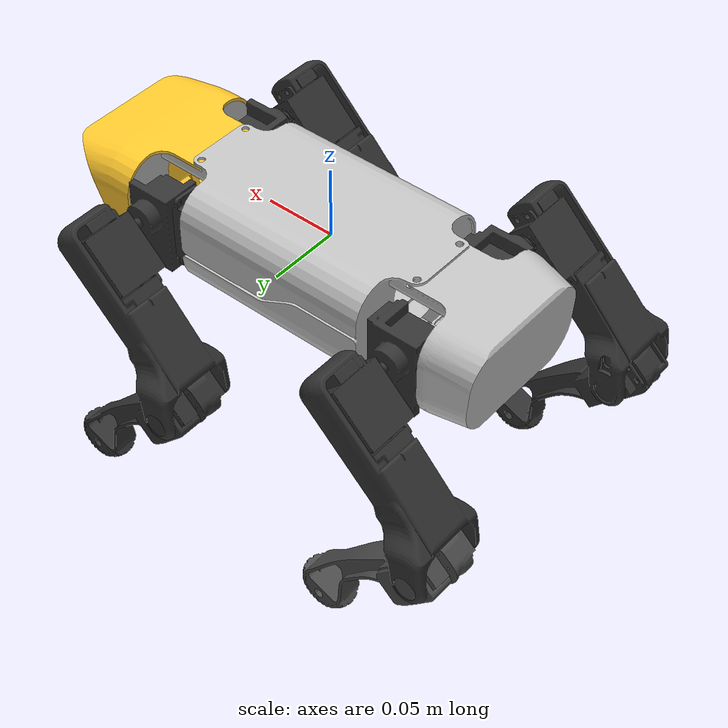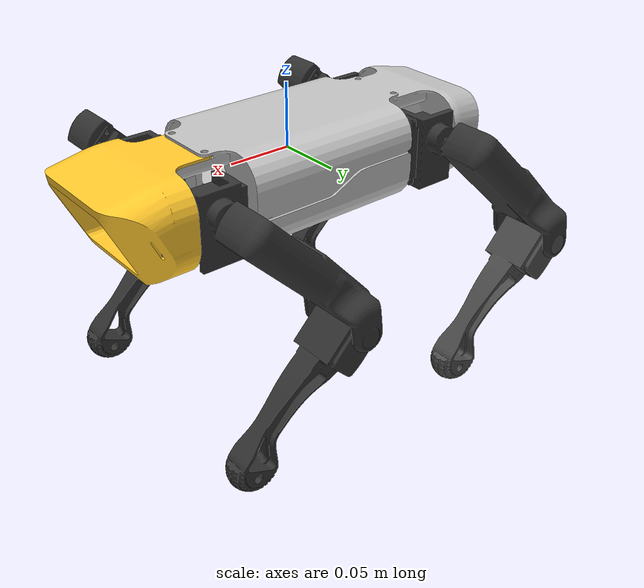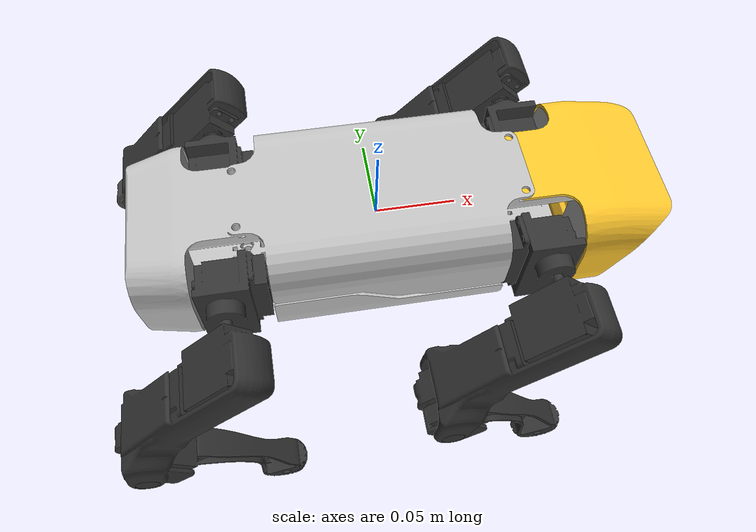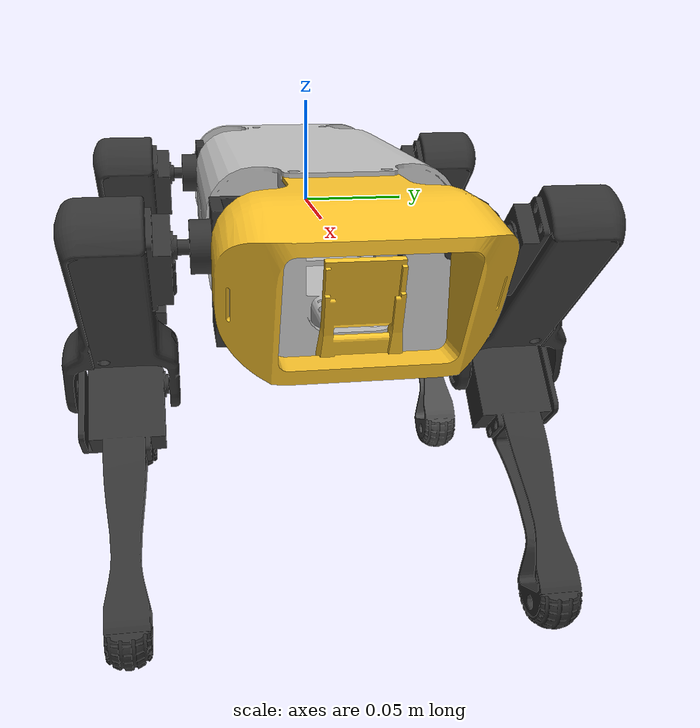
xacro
<?xml version="1.0"?>
<robot
  name="quadruped_robot" xmlns:xacro="http://ros.org/wiki/xacro">

  <link name="dummy_link"></link> # Add this after base link <joint name="dummy_joint" type="fixed">
    <origin rpy="0 0 0" xyz="0 0 0" />
    <parent link="dummy_link" />
    <child link="body_link" />
  </joint>

  <link
    name="body_link">
    <inertial>
      <origin
        xyz="-0.0104808628759405 0.00224834175396924 -0.0052263545122232"
        rpy="0 0 0" />
      <mass
        value="2.8" />
      <inertia
        ixx="100"
        ixy="0"
        ixz="0"
        iyy="100"
        iyz="0"
        izz="100" />
    </inertial>
    <visual>
      <origin
        xyz="0 0 0"
        rpy="0 0 0" />
      <geometry>
        <mesh
          filename="package://quadruped_robot/meshes/body_link.STL" />
      </geometry>
      <material
        name="">
        <color
          rgba="0.752941176470588 0.752941176470588 0.752941176470588 1" />
      </material>
    </visual>
    <collision>
      <origin
        xyz="0 0 0"
        rpy="0 0 0" />
      <geometry>
        <mesh
          filename="package://quadruped_robot/meshes/body_link.STL" />
      </geometry>
    </collision>
  </link>
  <link
    name="frs_link">
    <inertial>
      <origin
        xyz="0.0163093960247798 -0.00505196516998213 -0.0274849143348015"
        rpy="0 0 0" />
      <mass
        value="0.15" />
      <inertia
        ixx="100"
        ixy="0"
        ixz="0"
        iyy="100"
        iyz="0"
        izz="100" />
    </inertial>
    <visual>
      <origin
        xyz="0 0 0"
        rpy="0 0 0" />
      <geometry>
        <mesh
          filename="package://quadruped_robot/meshes/frs_link.STL" />
      </geometry>
      <material
        name="">
        <color
          rgba="0.2 0.2 0.2 1" />
      </material>
    </visual>
    <collision>
      <origin
        xyz="0 0 0"
        rpy="0 0 0" />
      <geometry>
        <mesh
          filename="package://quadruped_robot/meshes/frs_link.STL" />
      </geometry>
    </collision>
  </link>
  <joint
    name="frs_joint"
    type="revolute">
    <origin
      xyz="0.0692381468948904 -0.036563051924115 0"
      rpy="1.5707963267949 0 -1.5707963267949" />
    <parent
      link="body_link" />
    <child
      link="frs_link" />
    <axis
      xyz="0 0 -1" />
    <limit
      lower="-1.04"
      upper="1.04"
      effort="20"
      velocity="6" />
    <dynamics damping="0.01"
      friction="0.6" />
  </joint>
  <link
    name="fre_link">
    <inertial>
      <origin
        xyz="-0.0348617587747592 -0.0401535760436038 0.0318877501407731"
        rpy="0 0 0" />
      <mass
        value="0.15" />
      <inertia
        ixx="100"
        ixy="0"
        ixz="0"
        iyy="100"
        iyz="0"
        izz="100" />
    </inertial>
    <visual>
      <origin
        xyz="0 0 0"
        rpy="0 0 0" />
      <geometry>
        <mesh
          filename="package://quadruped_robot/meshes/fre_link.STL" />
      </geometry>
      <material
        name="">
        <color
          rgba="0.2 0.2 0.2 1" />
      </material>
    </visual>
    <collision>
      <origin
        xyz="0 0 0"
        rpy="0 0 0" />
      <geometry>
        <mesh
          filename="package://quadruped_robot/meshes/fre_link.STL" />
      </geometry>
    </collision>
  </link>
  <joint
    name="fre_joint"
    type="revolute">
    <origin
      xyz="0.026 2.5E-05 -0.0292"
      rpy="0 1.5708 0" />
    <parent
      link="frs_link" />
    <child
      link="fre_link" />
    <axis
      xyz="0 0 1" />
    <limit
      lower="-1.57"
      upper="1.57"
      effort="20"
      velocity="6" />
    <dynamics damping="0.01"
      friction="0.6" />
  </joint>
  <link
    name="frw_link">
    <inertial>
      <origin
        xyz="0.0332213053367797 -0.0366951699334233 0.0245753331663336"
        rpy="0 0 0" />
      <mass
        value="0.15" />
      <inertia
        ixx="100"
        ixy="0"
        ixz="0"
        iyy="100"
        iyz="0"
        izz="100" />
    </inertial>
    <visual>
      <origin
        xyz="0 0 0"
        rpy="0 0 0" />
      <geometry>
        <mesh
          filename="package://quadruped_robot/meshes/frw_link.STL" />
      </geometry>
      <material
        name="">
        <color
          rgba="0.2 0.2 0.2 1" />
      </material>
    </visual>
    <collision>
      <origin
        xyz="0 0 0"
        rpy="0 0 0" />
      <geometry>
        <mesh
          filename="package://quadruped_robot/meshes/frw_link.STL" />
      </geometry>
      <surface>
        <friction>
          <ode>
            <mu>0.1</mu>
            <mu2>0.1</mu2>
          </ode>
        </friction>
      </surface>
    </collision>
  </link>
  <joint
    name="frw_joint"
    type="revolute">
    <origin
      xyz="-0.0662802231881607 -0.0864763481921448 0.0120000007629388"
      rpy="0 0 0" />
    <parent
      link="fre_link" />
    <child
      link="frw_link" />
    <axis
      xyz="0 0 1" />
    <limit
      lower="-1.57"
      upper="1.57"
      effort="20"
      velocity="6" />
    <dynamics damping="0.01"
      friction="0.6" />
  </joint>
  <link
    name="rrs_link">
    <inertial>
      <origin
        xyz="-0.0163095359847977 -0.00505178186569167 -0.0274848378346865"
        rpy="0 0 0" />
      <mass
        value="0.15" />
      <inertia
        ixx="100"
        ixy="0"
        ixz="0"
        iyy="100"
        iyz="0"
        izz="100" />
    </inertial>
    <visual>
      <origin
        xyz="0 0 0"
        rpy="0 0 0" />
      <geometry>
        <mesh
          filename="package://quadruped_robot/meshes/rrs_link.STL" />
      </geometry>
      <material
        name="">
        <color
          rgba="0.2 0.2 0.2 1" />
      </material>
    </visual>
    <collision>
      <origin
        xyz="0 0 0"
        rpy="0 0 0" />
      <geometry>
        <mesh
          filename="package://quadruped_robot/meshes/rrs_link.STL" />
      </geometry>
    </collision>
  </link>
  <joint
    name="rrs_joint"
    type="revolute">
    <origin
      xyz="-0.0677618531051057 -0.0365628086889124 0"
      rpy="1.5707963267949 0 1.5707963267949" />
    <parent
      link="body_link" />
    <child
      link="rrs_link" />
    <axis
      xyz="0 0 1" />
    <limit
      lower="-1.04"
      upper="1.04"
      effort="20"
      velocity="6" />
    <dynamics damping="0.01"
      friction="0.6" />
  </joint>
  <link
    name="rre_link">
    <inertial>
      <origin
        xyz="-0.0353949234320192 -0.0396843949308324 0.0318877499657951"
        rpy="0 0 0" />
      <mass
        value="0.15" />
      <inertia
        ixx="100"
        ixy="0"
        ixz="0"
        iyy="100"
        iyz="0"
        izz="100" />
    </inertial>
    <visual>
      <origin
        xyz="0 0 0"
        rpy="0 0 0" />
      <geometry>
        <mesh
          filename="package://quadruped_robot/meshes/rre_link.STL" />
      </geometry>
      <material
        name="">
        <color
          rgba="0.2 0.2 0.2 1" />
      </material>
    </visual>
    <collision>
      <origin
        xyz="0 0 0"
        rpy="0 0 0" />
      <geometry>
        <mesh
          filename="package://quadruped_robot/meshes/rre_link.STL" />
      </geometry>
    </collision>
  </link>
  <joint
    name="rre_joint"
    type="revolute">
    <origin
      xyz="-0.026 2.5092E-05 -0.0292"
      rpy="0 -1.5708 0" />
    <parent
      link="rrs_link" />
    <child
      link="rre_link" />
    <axis
      xyz="0 0 1" />
    <limit
      lower="-1.57"
      upper="1.57"
      effort="20"
      velocity="6" />
    <dynamics damping="0.01"
      friction="0.6" />
  </joint>
  <link
    name="rrw_link">
    <inertial>
      <origin
        xyz="0.0327282618505259 -0.0371355920751884 0.024575333341552"
        rpy="0 0 0" />
      <mass
        value="0.15" />
      <inertia
        ixx="100"
        ixy="0"
        ixz="0"
        iyy="100"
        iyz="0"
        izz="100" />
    </inertial>
    <visual>
      <origin
        xyz="0 0 0"
        rpy="0 0 0" />
      <geometry>
        <mesh
          filename="package://quadruped_robot/meshes/rrw_link.STL" />
      </geometry>
      <material
        name="">
        <color
          rgba="0.2 0.2 0.2 1" />
      </material>
    </visual>
    <collision>
      <origin
        xyz="0 0 0"
        rpy="0 0 0" />
      <geometry>
        <mesh
          filename="package://quadruped_robot/meshes/rrw_link.STL" />
      </geometry>
      <surface>
        <friction>
          <ode>
            <mu>0.1</mu>
            <mu2>0.1</mu2>
          </ode>
        </friction>
      </surface>
    </collision>
  </link>
  <joint
    name="rrw_joint"
    type="revolute">
    <origin
      xyz="-0.0674292551030644 -0.0855834232709074 0.0120000007629388"
      rpy="0 0 0" />
    <parent
      link="rre_link" />
    <child
      link="rrw_link" />
    <axis
      xyz="0 0 1" />
    <limit
      lower="-1.57"
      upper="1.57"
      effort="20"
      velocity="6" />
    <dynamics damping="0.01"
      friction="0.6" />
  </joint>
  <link
    name="fls_link">
    <inertial>
      <origin
        xyz="-0.0163097792199962 -0.00505189850993423 -0.0274848378346823"
        rpy="0 0 0" />
      <mass
        value="0.15" />
      <inertia
        ixx="100"
        ixy="0"
        ixz="0"
        iyy="100"
        iyz="0"
        izz="100" />
    </inertial>
    <visual>
      <origin
        xyz="0 0 0"
        rpy="0 0 0" />
      <geometry>
        <mesh
          filename="package://quadruped_robot/meshes/fls_link.STL" />
      </geometry>
      <material
        name="">
        <color
          rgba="0.2 0.2 0.2 1" />
      </material>
    </visual>
    <collision>
      <origin
        xyz="0 0 0"
        rpy="0 0 0" />
      <geometry>
        <mesh
          filename="package://quadruped_robot/meshes/fls_link.STL" />
      </geometry>
    </collision>
  </link>
  <joint
    name="fls_joint"
    type="revolute">
    <origin
      xyz="0.0692381468948904 0.041436948075885 0"
      rpy="1.5707963267949 0 -1.5707963267949" />
    <parent
      link="body_link" />
    <child
      link="fls_link" />
    <axis
      xyz="0 0 -1" />
    <limit
      lower="-1.04"
      upper="1.04"
      effort="20"
      velocity="6" />
    <dynamics damping="0.01"
      friction="0.6" />
  </joint>
  <link
    name="fle_link">
    <inertial>
      <origin
        xyz="0.0350678452252907 -0.0400605094902882 0.0318602163794606"
        rpy="0 0 0" />
      <mass
        value="0.15" />
      <inertia
        ixx="100"
        ixy="0"
        ixz="0"
        iyy="100"
        iyz="0"
        izz="100" />
    </inertial>
    <visual>
      <origin
        xyz="0 0 0"
        rpy="0 0 0" />
      <geometry>
        <mesh
          filename="package://quadruped_robot/meshes/fle_link.STL" />
      </geometry>
      <material
        name="">
        <color
          rgba="0.2 0.2 0.2 1" />
      </material>
    </visual>
    <collision>
      <origin
        xyz="0 0 0"
        rpy="0 0 0" />
      <geometry>
        <mesh
          filename="package://quadruped_robot/meshes/fle_link.STL" />
      </geometry>
    </collision>
  </link>
  <joint
    name="fle_joint"
    type="revolute">
    <origin
      xyz="-0.026 2.5E-05 -0.0292"
      rpy="0 -1.5708 0" />
    <parent
      link="fls_link" />
    <child
      link="fle_link" />
    <axis
      xyz="0 0 1" />
    <limit
      lower="-1.57"
      upper="1.57"
      effort="20"
      velocity="6" />
    <dynamics damping="0.01"
      friction="0.6" />
  </joint>
  <link
    name="flw_link">
    <inertial>
      <origin
        xyz="0.0334248441375446 0.0365098737154967 0.0245758218958261"
        rpy="0 0 0" />
      <mass
        value="0.15" />
      <inertia
        ixx="100"
        ixy="0"
        ixz="0"
        iyy="100"
        iyz="0"
        izz="100" />
    </inertial>
    <visual>
      <origin
        xyz="0 0 0"
        rpy="0 0 0" />
      <geometry>
        <mesh
          filename="package://quadruped_robot/meshes/flw_link.STL" />
      </geometry>
      <material
        name="">
        <color
          rgba="0.2 0.2 0.2 1" />
      </material>
    </visual>
    <collision>
      <origin
        xyz="0 0 0"
        rpy="0 0 0" />
      <geometry>
        <mesh
          filename="package://quadruped_robot/meshes/flw_link.STL" />
      </geometry>
      <surface>
        <friction>
          <ode>
            <mu>0.1</mu>
            <mu2>0.1</mu2>
          </ode>
        </friction>
      </surface>
    </collision>
  </link>
  <joint
    name="flw_joint"
    type="revolute">
    <origin
      xyz="0.0666437789549166 -0.0861964755789667 0.0120000007629387"
      rpy="0 0 3.14159265358979" />
    <parent
      link="fle_link" />
    <child
      link="flw_link" />
    <axis
      xyz="0 0 1" />
    <limit
      lower="-1.57"
      upper="1.57"
      effort="20"
      velocity="6" />
    <dynamics damping="0.01"
      friction="0.6" />
  </joint>
  <link
    name="rls_link">
    <inertial>
      <origin
        xyz="0.0163096392599824 -0.00505187347186335 -0.0274849143348058"
        rpy="0 0 0" />
      <mass
        value="0.15" />
      <inertia
        ixx="100"
        ixy="0"
        ixz="0"
        iyy="100"
        iyz="0"
        izz="100" />
    </inertial>
    <visual>
      <origin
        xyz="0 0 0"
        rpy="0 0 0" />
      <geometry>
        <mesh
          filename="package://quadruped_robot/meshes/rls_link.STL" />
      </geometry>
      <material
        name="">
        <color
          rgba="0.2 0.2 0.2 1" />
      </material>
    </visual>
    <collision>
      <origin
        xyz="0 0 0"
        rpy="0 0 0" />
      <geometry>
        <mesh
          filename="package://quadruped_robot/meshes/rls_link.STL" />
      </geometry>
    </collision>
  </link>
  <joint
    name="rls_joint"
    type="revolute">
    <origin
      xyz="-0.0677618531051057 0.0414371913110836 0"
      rpy="1.5707963267949 0 1.5707963267949" />
    <parent
      link="body_link" />
    <child
      link="rls_link" />
    <axis
      xyz="0 0 1" />
    <limit
      lower="-1.04"
      upper="1.04"
      effort="20"
      velocity="6" />
    <dynamics damping="0.01"
      friction="0.6" />
  </joint>
  <link
    name="rle_link">
    <inertial>
      <origin
        xyz="0.0356265571944218 -0.0395644610070837 0.0318602162662666"
        rpy="0 0 0" />
      <mass
        value="0.15" />
      <inertia
        ixx="100"
        ixy="0"
        ixz="0"
        iyy="100"
        iyz="0"
        izz="100" />
    </inertial>
    <visual>
      <origin
        xyz="0 0 0"
        rpy="0 0 0" />
      <geometry>
        <mesh
          filename="package://quadruped_robot/meshes/rle_link.STL" />
      </geometry>
      <material
        name="">
        <color
          rgba="0.2 0.2 0.2 1" />
      </material>
    </visual>
    <collision>
      <origin
        xyz="0 0 0"
        rpy="0 0 0" />
      <geometry>
        <mesh
          filename="package://quadruped_robot/meshes/rle_link.STL" />
      </geometry>
    </collision>
  </link>
  <joint
    name="rle_joint"
    type="revolute">
    <origin
      xyz="0.026 2.5117E-05 -0.0292"
      rpy="0 1.5708 0" />
    <parent
      link="rls_link" />
    <child
      link="rle_link" />
    <axis
      xyz="0 0 1" />
    <limit
      lower="-1.57"
      upper="1.57"
      effort="20"
      velocity="6" />
    <dynamics damping="0.01"
      friction="0.6" />
  </joint>
  <link
    name="rlw_link">
    <inertial>
      <origin
        xyz="-0.0329092151249457 -0.0369753287019312 0.0245758218509723"
        rpy="0 0 0" />
      <mass
        value="0.15" />
      <inertia
        ixx="100"
        ixy="0"
        ixz="0"
        iyy="100"
        iyz="0"
        izz="100" />
    </inertial>
    <visual>
      <origin
        xyz="0 0 0"
        rpy="0 0 0" />
      <geometry>
        <mesh
          filename="package://quadruped_robot/meshes/rlw_link.STL" />
      </geometry>
      <material
        name="">
        <color
          rgba="0.298039215686275 0.298039215686275 0.298039215686275 1" />
      </material>
    </visual>
    <collision>
      <origin
        xyz="0 0 0"
        rpy="0 0 0" />
      <geometry>
        <mesh
          filename="package://quadruped_robot/meshes/rlw_link.STL" />
      </geometry>
      <surface>
        <friction>
          <ode>
            <mu>0.1</mu>
            <mu2>0.1</mu2>
          </ode>
        </friction>
      </surface>
    </collision>
  </link>
  <joint
    name="rlw_joint"
    type="revolute">
    <origin
      xyz="0.0678468062868589 -0.0852527803200612 0.0120000007629387"
      rpy="0 0 0" />
    <parent
      link="rle_link" />
    <child
      link="rlw_link" />
    <axis
      xyz="0 0 1" />
    <limit
      lower="-1.57"
      upper="1.57"
      effort="20"
      velocity="6" />
    <dynamics damping="0.01"
      friction="0.6" />
  </joint>
  <link
    name="lidar_link">
    <inertial>
      <origin
        xyz="-0.000358929753362797 6.73648551979822E-06 0.00597084128520243"
        rpy="0 0 0" />
      <mass
        value="0.15" />
      <inertia
        ixx="100"
        ixy="0"
        ixz="0"
        iyy="100"
        iyz="0"
        izz="100" />
    </inertial>
    <visual>
      <origin
        xyz="0 0 0"
        rpy="0 0 0" />
      <geometry>
        <mesh
          filename="package://quadruped_robot/meshes/lidar_link.STL" />
      </geometry>
      <material
        name="">
        <color
          rgba="1 0.780392156862745 0.172549019607843 1" />
      </material>
    </visual>
    <collision>
      <origin
        xyz="0 0 0"
        rpy="0 0 0" />
      <geometry>
        <mesh
          filename="package://quadruped_robot/meshes/lidar_link.STL" />
      </geometry>
    </collision>
  </link>
  <joint
    name="lidar_joint"
    type="fixed">
    <origin
      xyz="0.13796897677403 0.00243727173357462 -0.0108941532533849"
      rpy="0 0 0" />
    <parent
      link="body_link" />
    <child
      link="lidar_link" />
    <axis
      xyz="0 0 0" />
  </joint>
  <ros2_control name="GazeboSystem" type="system">
    <hardware>
      <plugin>gazebo_ros2_control/GazeboSystem</plugin>
    </hardware>

    <joint name="frs_joint">
      <command_interface name="position">
        <param name="min">-3.14</param>
        <param name="max">3.14</param>
      </command_interface>
      <state_interface name="position" />
      <state_interface name="velocity" />
    </joint>

    <joint name="fre_joint">
      <command_interface name="position">
        <param name="min">-3.14</param>
        <param name="max">3.14</param>
      </command_interface>
      <state_interface name="position" />
      <state_interface name="velocity" />
    </joint>

    <joint name="frw_joint">
      <command_interface name="position">
        <param name="min">-3.14</param>
        <param name="max">3.14</param>
      </command_interface>
      <state_interface name="position" />
      <state_interface name="velocity" />
    </joint>

    <joint name="rrs_joint">
      <command_interface name="position">
        <param name="min">-3.14</param>
        <param name="max">3.14</param>
      </command_interface>
      <state_interface name="position" />
      <state_interface name="velocity" />
    </joint>

    <joint name="rre_joint">
      <command_interface name="position">
        <param name="min">-3.14</param>
        <param name="max">3.14</param>
      </command_interface>
      <state_interface name="position" />
      <state_interface name="velocity" />
    </joint>

    <joint name="rrw_joint">
      <command_interface name="position">
        <param name="min">-3.14</param>
        <param name="max">3.14</param>
      </command_interface>
      <state_interface name="position" />
      <state_interface name="velocity" />
    </joint>

    <joint name="fls_joint">
      <command_interface name="position">
        <param name="min">-3.14</param>
        <param name="max">3.14</param>
      </command_interface>
      <state_interface name="position" />
      <state_interface name="velocity" />
    </joint>

    <joint name="fle_joint">
      <command_interface name="position">
        <param name="min">-3.14</param>
        <param name="max">3.14</param>
      </command_interface>
      <state_interface name="position" />
      <state_interface name="velocity" />
    </joint>

    <joint name="flw_joint">
      <command_interface name="position">
        <param name="min">-3.14</param>
        <param name="max">3.14</param>
      </command_interface>
      <state_interface name="position" />
      <state_interface name="velocity" />
    </joint>

    <joint name="rls_joint">
      <command_interface name="position">
        <param name="min">-3.14</param>
        <param name="max">3.14</param>
      </command_interface>
      <state_interface name="position" />
      <state_interface name="velocity" />
    </joint>

    <joint name="rle_joint">
      <command_interface name="position">
        <param name="min">-3.14</param>
        <param name="max">3.14</param>
      </command_interface>
      <state_interface name="position" />
      <state_interface name="velocity" />
    </joint>

    <joint name="rlw_joint">
      <command_interface name="position">
        <param name="min">-3.14</param>
        <param name="max">3.14</param>
      </command_interface>
      <state_interface name="position" />
      <state_interface name="velocity" />
    </joint>

  </ros2_control>
  <gazebo>
    <plugin filename="libgazebo_ros2_control.so" name="gazebo_ros2_control">
      <parameters>$(find quadruped_robot)/config/control.yaml</parameters>
    </plugin>
  </gazebo>

  <link
    name="supplement"></link>

  <joint
    name="supplement_joint"
    type="fixed">
    <origin
      xyz="-0.0502486950872626 5.55111512312578E-17 0.0"
      rpy="0 0 0" />
    <parent
      link="lidar_link" />
    <child
      link="supplement" />
    <axis
      xyz="0 0 0" />
  </joint>

  <gazebo
    reference="supplement">
    <sensor name="lidar" type="ray">
      <pose>0.0 0.0 0.0 0 0 0</pose>
      <always_on>true</always_on>
      <visualize>true</visualize>
      <update_rate>5</update_rate>
      <ray>
        <scan>
          <horizontal>
            <samples>360</samples>
            <resolution>1.00000</resolution>
            <min_angle>1.047</min_angle>
            <max_angle>-1.047</max_angle>
          </horizontal>
        </scan>
        <range>
          <min>0.120000</min>
          <max>3.5</max>
          <resolution>0.015000</resolution>
        </range>
        <noise>
          <type>gaussian</type>
          <mean>0.0</mean>
          <stddev>0.01</stddev>
        </noise>
      </ray>
      <plugin name="scan" filename="libgazebo_ros_ray_sensor.so">
        <ros>
          <remapping>~/out:=scan</remapping>
        </ros>
        <output_type>sensor_msgs/LaserScan</output_type>
        <frame_name>supplement</frame_name>
      </plugin>
    </sensor>
  </gazebo>

  <gazebo
    reference="body_link">
    <gravity>true</gravity>
    <sensor name="imu_sensor" type="imu">
      <always_on>true</always_on>
      <update_rate>100</update_rate>
      <visualize>true</visualize>
      <topic>__default_topic__</topic>
      <plugin filename="libgazebo_ros_imu_sensor.so" name="imu_plugin">
        <topicName>imu</topicName>
        <bodyName>body_link</bodyName>
        <updateRateHZ>10.0</updateRateHZ>
        <gaussianNoise>0.0</gaussianNoise>
        <xyzOffset>0 0 0</xyzOffset>
        <rpyOffset>0 0 0</rpyOffset>
        <frameName>body_link</frameName>
        <initialOrientationAsReference>false</initialOrientationAsReference>
      </plugin>
      <pose>0 0 0 0 0 0</pose>
    </sensor>
  </gazebo>

<gazebo>
    <plugin filename="libodometry_plugin.so" name="odometry_plugin">
      <frame>body_link</frame>
      <world_frame>fixed_world</world_frame>
    </plugin>
  </gazebo>

<xacro:macro name="yellow">
    <visual>
      <material>
        <ambient>0.9 0.7 0.1 1</ambient>
        <diffuse>0.9 0.7 0.1 1</diffuse>
        <specular>0.1 0.1 0.1 1</specular>
        <emissive>0 0 0 0</emissive>
      </material>
    </visual>
  </xacro:macro>

  <xacro:macro
    name="black">
    <visual>
      <material>
        <ambient>0.1 0.1 0.1 1</ambient>
        <diffuse>0.1 0.1 0.1 1</diffuse>
        <specular>0.2 0.2 0.2 1</specular>
        <emissive>0 0 0 0</emissive>
      </material>
    </visual>
  </xacro:macro>

<gazebo
    reference="body_link">
    <xacro:yellow />
  </gazebo>

<gazebo reference="fls_link">
    <xacro:black />
  </gazebo>

<gazebo reference="fle_link">
    <xacro:yellow />
  </gazebo>

<gazebo reference="flw_link">
    <xacro:black />
  </gazebo>

<gazebo reference="rls_link">
    <xacro:black />
  </gazebo>

<gazebo reference="rle_link">
    <xacro:yellow />
  </gazebo>

<gazebo reference="rlw_link">
    <xacro:black />
  </gazebo>

<gazebo reference="frs_link">
    <xacro:black />
  </gazebo>

<gazebo reference="fre_link">
    <xacro:yellow />
  </gazebo>

<gazebo reference="frw_link">
    <xacro:black />
  </gazebo>

<gazebo reference="rrs_link">
    <xacro:black />
  </gazebo>

<gazebo reference="rre_link">
    <xacro:yellow />
  </gazebo>

<gazebo reference="rrw_link">
    <xacro:black />
  </gazebo>

<gazebo reference="lidar_link">
    <xacro:yellow />
  </gazebo>

</robot>
